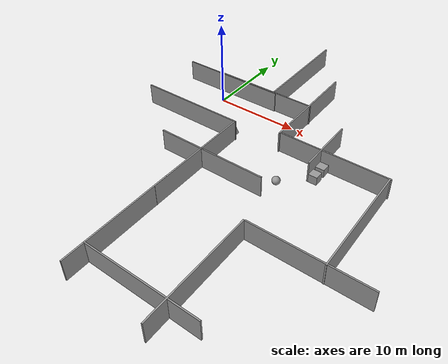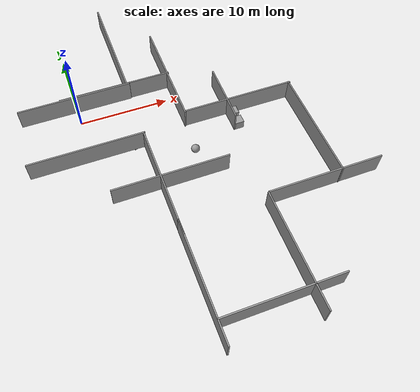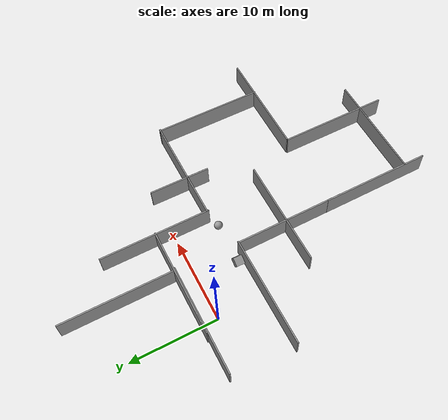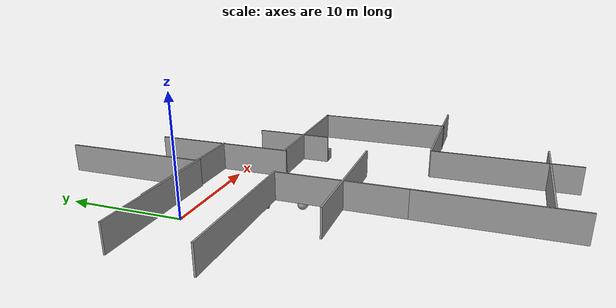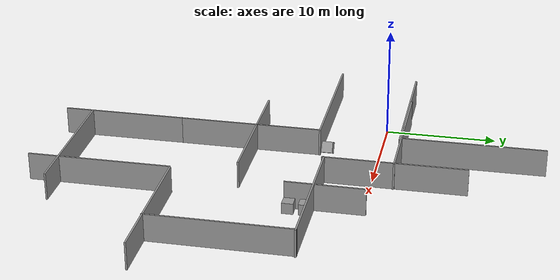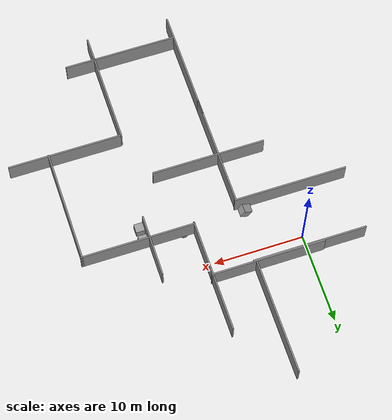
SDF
<sdf version="1.6">
 <world name="default">
  <light name="sun" type="directional">
   <pose>0 0 10 0 -0 0</pose>
   <diffuse>0.8 0.8 0.8 1</diffuse>
   <specular>0.2 0.2 0.2 1</specular>
   <attenuation>
    <range>1000</range>
    <constant>0.9</constant>
    <linear>0.01</linear>
    <quadratic>0.001</quadratic>
   </attenuation>
   <direction>-0.5 0.1 -0.9</direction>
  </light>
  <gravity>0 0 -9.8</gravity>
  <magnetic_field>6e-06 2.3e-05 -4.2e-05</magnetic_field>
  <atmosphere type="adiabatic"/>
  <physics name="default_physics" default="0" type="ode">
   <max_step_size>0.001</max_step_size>
   <real_time_factor>1</real_time_factor>
   <real_time_update_rate>1000</real_time_update_rate>
  </physics>
  <scene><ambient>0.4 0.4 0.4 1</ambient><background>0.7 0.7 0.7 1</background><shadows>1</shadows></scene>
  <spherical_coordinates>
   <surface_model>EARTH_WGS84</surface_model>
   <latitude_deg>0</latitude_deg>
   <longitude_deg>0</longitude_deg>
   <elevation>0</elevation>
   <heading_deg>0</heading_deg>
  </spherical_coordinates>
  <model name="walluse">
   <pose>-0.402663 -5.38696 0 0 -0 0</pose>
   <link name="Wall_0">
    <collision name="Wall_0_Collision">
     <geometry><box><size>12.75 0.15 2.5</size></box></geometry>
     <pose>0 0 1.25 0 -0 0</pose>
    </collision>
    <visual name="Wall_0_Visual">
     <pose>0 0 1.25 0 -0 0</pose>
     <geometry><box><size>12.75 0.15 2.5</size></box></geometry>
     <material>
      <script><uri>file://media/materials/scripts/gazebo.material</uri><name>Gazebo/Grey</name></script>
      <ambient>1 1 1 1</ambient>
     </material>
     <meta><layer>0</layer></meta>
    </visual>
   </link>
   <static>1</static>
  </model>
  <model name="walluse_clone">
   <pose>-0.015742 1.86843 0 0 -0 0</pose>
   <link name="Wall_0">
    <collision name="Wall_0_Collision">
     <geometry><box><size>12.75 0.15 2.5</size></box></geometry>
     <pose>0 0 1.25 0 -0 0</pose>
    </collision>
    <visual name="Wall_0_Visual">
     <pose>0 0 1.25 0 -0 0</pose>
     <geometry><box><size>12.75 0.15 2.5</size></box></geometry>
     <material>
      <script><uri>file://media/materials/scripts/gazebo.material</uri><name>Gazebo/Grey</name></script>
      <ambient>1 1 1 1</ambient>
     </material>
     <meta><layer>0</layer></meta>
    </visual>
   </link>
   <static>1</static>
  </model>
  <model name="walluse_clone_0">
   <pose>10.8754 2.02396 0 0 -0 1.57672</pose>
   <link name="Wall_0">
    <collision name="Wall_0_Collision">
     <geometry><box><size>12.75 0.15 2.5</size></box></geometry>
     <pose>0 0 1.25 0 -0 0</pose>
    </collision>
    <visual name="Wall_0_Visual">
     <pose>0 0 1.25 0 -0 0</pose>
     <geometry><box><size>12.75 0.15 2.5</size></box></geometry>
     <material>
      <script><uri>file://media/materials/scripts/gazebo.material</uri><name>Gazebo/Grey</name></script>
      <ambient>1 1 1 1</ambient>
     </material>
     <meta><layer>0</layer></meta>
    </visual>
   </link>
   <static>1</static>
  </model>
  <model name="walluse_clone_1_clone">
   <pose>4.66434 1.98266 0 0 -0 0</pose>
   <link name="Wall_0">
    <collision name="Wall_0_Collision">
     <geometry><box><size>12.75 0.15 2.5</size></box></geometry>
     <pose>0 0 1.25 0 -0 0</pose>
    </collision>
    <visual name="Wall_0_Visual">
     <pose>0 0 1.25 0 -0 0</pose>
     <geometry><box><size>12.75 0.15 2.5</size></box></geometry>
     <material>
      <script><uri>file://media/materials/scripts/gazebo.material</uri><name>Gazebo/Grey</name></script>
      <ambient>1 1 1 1</ambient>
     </material>
     <meta><layer>0</layer></meta>
    </visual>
   </link>
   <static>1</static>
  </model>
  <model name="walluse_clone_0_clone_clone">
   <pose>5.98239 8.45043 0 0 -0 1.57672</pose>
   <link name="Wall_0">
    <collision name="Wall_0_Collision">
     <geometry><box><size>12.75 0.15 2.5</size></box></geometry>
     <pose>0 0 1.25 0 -0 0</pose>
    </collision>
    <visual name="Wall_0_Visual">
     <pose>0 0 1.25 0 -0 0</pose>
     <geometry><box><size>12.75 0.15 2.5</size></box></geometry>
     <material>
      <script><uri>file://media/materials/scripts/gazebo.material</uri><name>Gazebo/Grey</name></script>
      <ambient>1 1 1 1</ambient>
     </material>
     <meta><layer>0</layer></meta>
    </visual>
   </link>
   <static>1</static>
  </model>
  <model name="walluse_clone_1_clone_clone_0">
   <pose>17.2356 -4.13812 0 0 -0 0</pose>
   <link name="Wall_0">
    <collision name="Wall_0_Collision">
     <geometry><box><size>12.75 0.15 2.5</size></box></geometry>
     <pose>0 0 1.25 0 -0 0</pose>
    </collision>
    <visual name="Wall_0_Visual">
     <pose>0 0 1.25 0 -0 0</pose>
     <geometry><box><size>12.75 0.15 2.5</size></box></geometry>
     <material>
      <script><uri>file://media/materials/scripts/gazebo.material</uri><name>Gazebo/Grey</name></script>
      <ambient>1 1 1 1</ambient>
     </material>
     <meta><layer>0</layer></meta>
    </visual>
   </link>
   <static>1</static>
  </model>
  <model name="walluse_clone_0_clone_0">
   <pose>5.85185 -11.8072 0 0 -0 1.57672</pose>
   <link name="Wall_0">
    <collision name="Wall_0_Collision">
     <geometry><box><size>12.75 0.15 2.5</size></box></geometry>
     <pose>0 0 1.25 0 -0 0</pose>
    </collision>
    <visual name="Wall_0_Visual">
     <pose>0 0 1.25 0 -0 0</pose>
     <geometry><box><size>12.75 0.15 2.5</size></box></geometry>
     <material>
      <script><uri>file://media/materials/scripts/gazebo.material</uri><name>Gazebo/Grey</name></script>
      <ambient>1 1 1 1</ambient>
     </material>
     <meta><layer>0</layer></meta>
    </visual>
   </link>
   <static>1</static>
  </model>
  <model name="walluse_clone_0_clone_0_clone">
   <pose>23.4569 -10.4273 0 0 -0 1.57672</pose>
   <link name="Wall_0">
    <collision name="Wall_0_Collision">
     <geometry><box><size>12.75 0.15 2.5</size></box></geometry>
     <pose>0 0 1.25 0 -0 0</pose>
    </collision>
    <visual name="Wall_0_Visual">
     <pose>0 0 1.25 0 -0 0</pose>
     <geometry><box><size>12.75 0.15 2.5</size></box></geometry>
     <material>
      <script><uri>file://media/materials/scripts/gazebo.material</uri><name>Gazebo/Grey</name></script>
      <ambient>1 1 1 1</ambient>
     </material>
     <meta><layer>0</layer></meta>
    </visual>
   </link>
   <static>1</static>
  </model>
  <model name="walluse_clone_1_clone_0">
   <pose>6.98219 -11.2069 0 0 -0 0</pose>
   <link name="Wall_0">
    <collision name="Wall_0_Collision">
     <geometry><box><size>12.75 0.15 2.5</size></box></geometry>
     <pose>0 0 1.25 0 -0 0</pose>
    </collision>
    <visual name="Wall_0_Visual">
     <pose>0 0 1.25 0 -0 0</pose>
     <geometry><box><size>12.75 0.15 2.5</size></box></geometry>
     <material>
      <script><uri>file://media/materials/scripts/gazebo.material</uri><name>Gazebo/Grey</name></script>
      <ambient>1 1 1 1</ambient>
     </material>
     <meta><layer>0</layer></meta>
    </visual>
   </link>
   <static>1</static>
  </model>
  <model name="walluse_clone_0_clone_0_clone_clone">
   <pose>15.2744 -23.063 0 0 -0 1.57672</pose>
   <link name="Wall_0">
    <collision name="Wall_0_Collision">
     <geometry><box><size>12.75 0.15 2.5</size></box></geometry>
     <pose>0 0 1.25 0 -0 0</pose>
    </collision>
    <visual name="Wall_0_Visual">
     <pose>0 0 1.25 0 -0 0</pose>
     <geometry><box><size>12.75 0.15 2.5</size></box></geometry>
     <material>
      <script><uri>file://media/materials/scripts/gazebo.material</uri><name>Gazebo/Grey</name></script>
      <ambient>1 1 1 1</ambient>
     </material>
     <meta><layer>0</layer></meta>
    </visual>
   </link>
   <static>1</static>
  </model>
  <model name="walluse_clone_1_clone_clone_0_clone_clone">
   <pose>21.6828 -16.6748 0 0 -0 0</pose>
   <link name="Wall_0">
    <collision name="Wall_0_Collision">
     <geometry><box><size>12.75 0.15 2.5</size></box></geometry>
     <pose>0 0 1.25 0 -0 0</pose>
    </collision>
    <visual name="Wall_0_Visual">
     <pose>0 0 1.25 0 -0 0</pose>
     <geometry><box><size>12.75 0.15 2.5</size></box></geometry>
     <material>
      <script><uri>file://media/materials/scripts/gazebo.material</uri><name>Gazebo/Grey</name></script>
      <ambient>1 1 1 1</ambient>
     </material>
     <meta><layer>0</layer></meta>
    </visual>
   </link>
   <static>1</static>
  </model>
  <model name="walluse_clone_0_clone_0_clone_0">
   <pose>5.90775 -22.8551 0 0 -0 1.57672</pose>
   <link name="Wall_0">
    <collision name="Wall_0_Collision">
     <geometry><box><size>12.75 0.15 2.5</size></box></geometry>
     <pose>0 0 1.25 0 -0 0</pose>
    </collision>
    <visual name="Wall_0_Visual">
     <pose>0 0 1.25 0 -0 0</pose>
     <geometry><box><size>12.75 0.15 2.5</size></box></geometry>
     <material>
      <script><uri>file://media/materials/scripts/gazebo.material</uri><name>Gazebo/Grey</name></script>
      <ambient>1 1 1 1</ambient>
     </material>
     <meta><layer>0</layer></meta>
    </visual>
   </link>
   <static>1</static>
  </model>
  <model name="unit_box">
   <pose>4.89702 -4.81196 0.328387 1e-06 -0.51113 -0</pose>
   <link name="link">
    <inertial>
     <mass>1</mass>
     <inertia>
      <ixx>0.166667</ixx>
      <ixy>0</ixy>
      <ixz>0</ixz>
      <iyy>0.166667</iyy>
      <iyz>0</iyz>
      <izz>0.166667</izz>
     </inertia>
    </inertial>
    <collision name="collision"><geometry><box><size>1 1 1</size></box></geometry></collision>
    <visual name="visual">
     <geometry><box><size>1 1 1</size></box></geometry>
     <material>
      <script><name>Gazebo/Grey</name><uri>file://media/materials/scripts/gazebo.material</uri></script>
     </material>
    </visual>
   </link>
  </model>
  <model name="walluse_clone_1_clone_1">
   <pose>12.2624 -26.722 0 0 -0 0</pose>
   <link name="Wall_0">
    <collision name="Wall_0_Collision">
     <geometry><box><size>12.75 0.15 2.5</size></box></geometry>
     <pose>0 0 1.25 0 -0 0</pose>
    </collision>
    <visual name="Wall_0_Visual">
     <pose>0 0 1.25 0 -0 0</pose>
     <geometry><box><size>12.75 0.15 2.5</size></box></geometry>
     <material>
      <script><uri>file://media/materials/scripts/gazebo.material</uri><name>Gazebo/Grey</name></script>
      <ambient>1 1 1 1</ambient>
     </material>
     <meta><layer>0</layer></meta>
    </visual>
   </link>
   <static>1</static>
  </model>
  <model name="unit_sphere_0">
   <pose>11.6411 -5.62571 -2.94855 2.69636 -0.949879 -0.798217</pose>
   <link name="link">
    <inertial>
     <mass>1</mass>
     <inertia><ixx>0.1</ixx><ixy>0</ixy><ixz>0</ixz><iyy>0.1</iyy><iyz>0</iyz><izz>0.1</izz></inertia>
    </inertial>
    <collision name="collision"><geometry><sphere><radius>0.5</radius></sphere></geometry></collision>
    <visual name="visual">
     <geometry><sphere><radius>0.5</radius></sphere></geometry>
     <material>
      <script><name>Gazebo/Grey</name><uri>file://media/materials/scripts/gazebo.material</uri></script>
     </material>
    </visual>
   </link>
  </model>
  <model name="wallyese">
   <pose>15.9216 -3.14517 0 0 -0 0</pose>
   <link name="Wall_2">
    <collision name="Wall_2_Collision">
     <geometry><box><size>7 0.15 2.5</size></box></geometry>
     <pose>0 0 1.25 0 -0 0</pose>
    </collision>
    <visual name="Wall_2_Visual">
     <pose>0 0 1.25 0 -0 0</pose>
     <geometry><box><size>7 0.15 2.5</size></box></geometry>
     <material>
      <script><uri>file://media/materials/scripts/gazebo.material</uri><name>Gazebo/Grey</name></script>
      <ambient>1 1 1 1</ambient>
     </material>
     <meta><layer>0</layer></meta>
    </visual>
    <pose>0 0 0 0 -0 -1.5708</pose>
   </link>
   <static>1</static>
  </model>
  <model name="unit_box_0">
   <pose>16.4966 -4.71713 0.5 0 -0 2e-06</pose>
   <link name="link">
    <inertial>
     <mass>1</mass>
     <inertia>
      <ixx>0.166667</ixx>
      <ixy>0</ixy>
      <ixz>0</ixz>
      <iyy>0.166667</iyy>
      <iyz>0</iyz>
      <izz>0.166667</izz>
     </inertia>
    </inertial>
    <collision name="collision"><geometry><box><size>1 1 1</size></box></geometry></collision>
    <visual name="visual">
     <geometry><box><size>1 1 1</size></box></geometry>
     <material>
      <script><name>Gazebo/Grey</name><uri>file://media/materials/scripts/gazebo.material</uri></script>
     </material>
    </visual>
   </link>
  </model>
  <model name="unit_box_0_clone">
   <pose>16.4966 -6.14343 0.499998 -2e-06 -3e-06 -1e-06</pose>
   <link name="link">
    <inertial>
     <mass>1</mass>
     <inertia>
      <ixx>0.166667</ixx>
      <ixy>0</ixy>
      <ixz>0</ixz>
      <iyy>0.166667</iyy>
      <iyz>0</iyz>
      <izz>0.166667</izz>
     </inertia>
    </inertial>
    <collision name="collision"><geometry><box><size>1 1 1</size></box></geometry></collision>
    <visual name="visual">
     <geometry><box><size>1 1 1</size></box></geometry>
     <material>
      <script><name>Gazebo/Grey</name><uri>file://media/materials/scripts/gazebo.material</uri></script>
     </material>
    </visual>
   </link>
  </model>
 </world>
</sdf>
